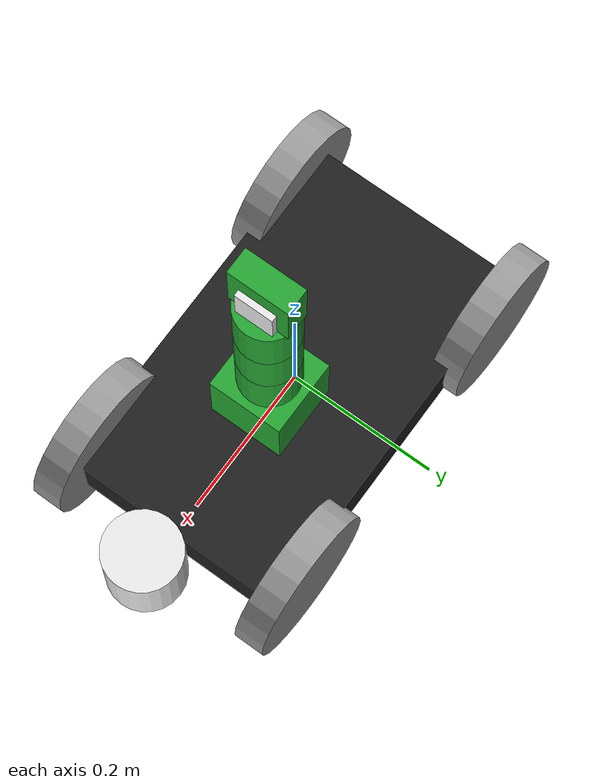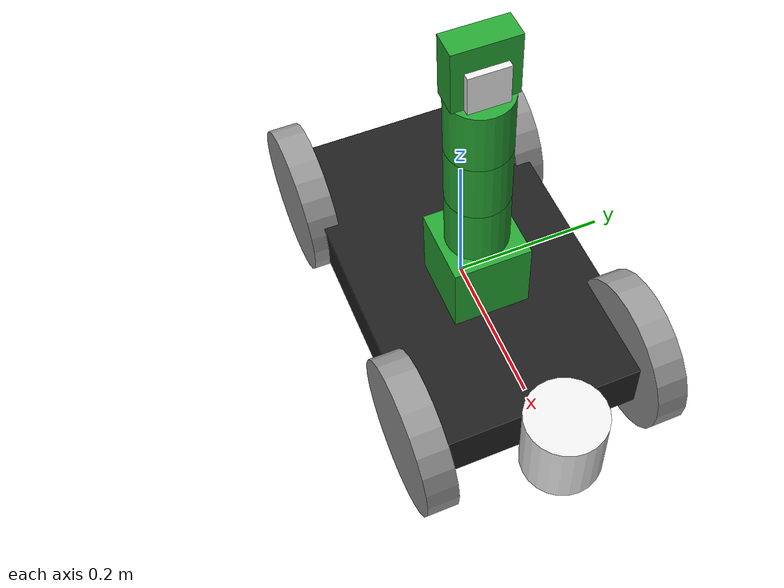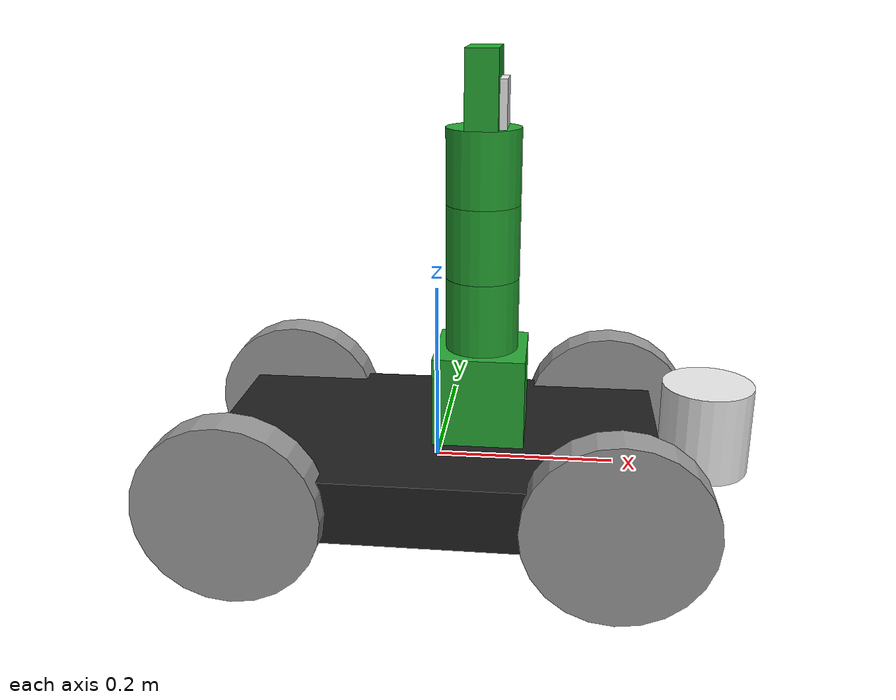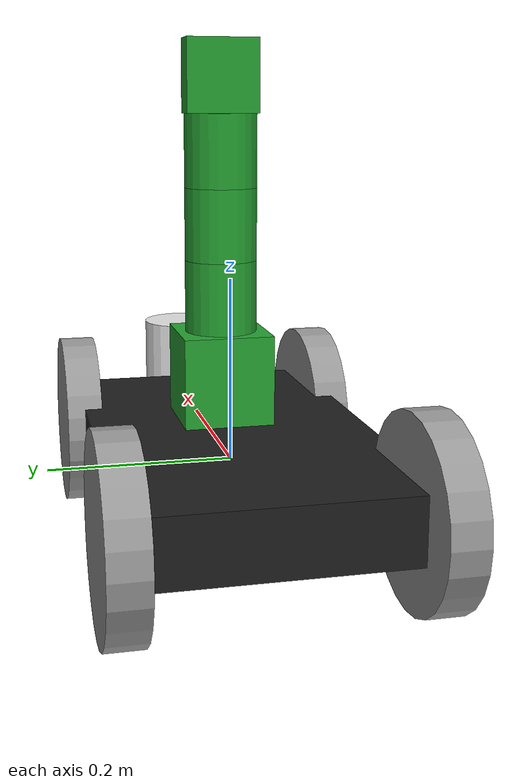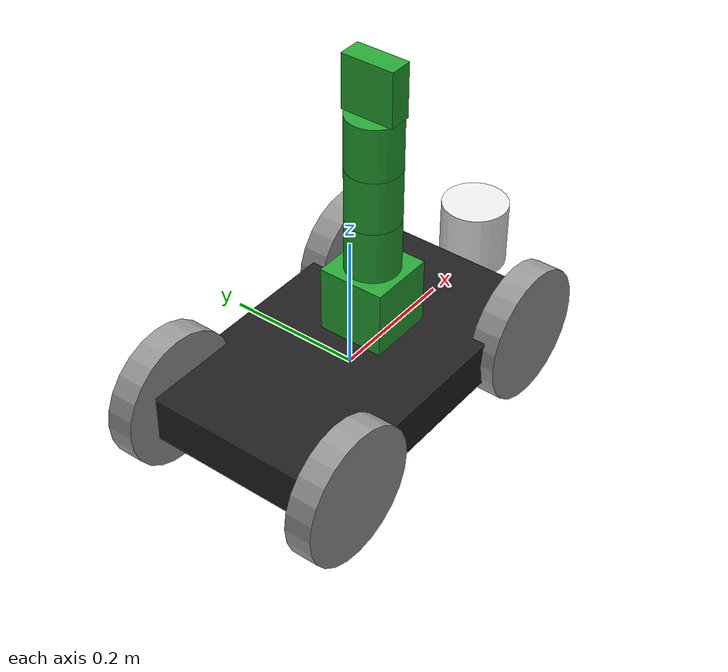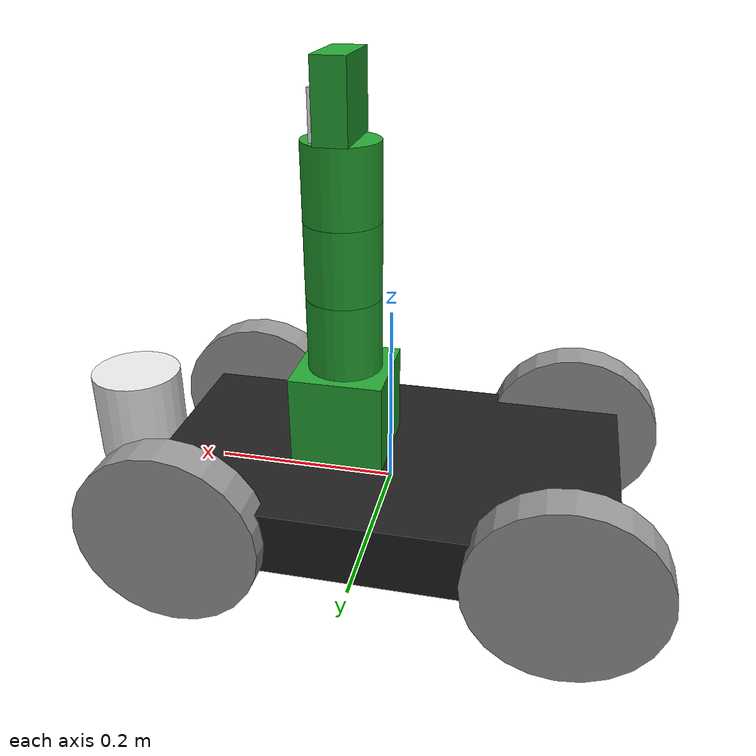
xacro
<?xml version="1.0" ?>
<robot name="myRob" xmlns:xacro="https://www.ros.org/wiki/xacro" >

 <xacro:include filename="$(find fsm_patrolling_robot)/urdf/materials.xacro" />
 <xacro:include filename="$(find fsm_patrolling_robot)/urdf/myRob.gazebo" />

 <xacro:macro name="cylinder_inertia" params="mass r l">
    <inertia ixx="${mass*(3*r*r+l*l)/12}" ixy = "0" ixz = "0"
                iyy="${mass*(3*r*r+l*l)/12}" iyz = "0" izz="${mass*(r*r)/2}" />
 </xacro:macro>

    	<xacro:property name="length_wheel" value="0.04" />
	<xacro:property name="radius_wheel" value="0.1" />

	<xacro:macro name="default_inertial" params="mass">
               <inertial>
                       <mass value="${mass}" />
                       <origin rpy="0 1.5707 1.5707" xyz="0 0 0"/>
                       <inertia ixx="0.000526666666667" ixy="0" ixz="0" iyy="0.000526666666667" iyz="0" izz="0.001"/>
               </inertial>
	</xacro:macro>

    <xacro:macro name="wheel_geometry">
		<geometry>
       			<cylinder length="${length_wheel}" radius="${radius_wheel}"/>
     	</geometry>
	</xacro:macro>

	<link name="link_chassis">
    <!-- pose and inertial -->
    <pose>0 0 0.1 0 0 0</pose>
    <inertial>
      <mass value="5"/>
      <origin rpy="0 0 0" xyz="0 0 0.1"/>
      <inertia ixx="0.0395416666667" ixy="0" ixz="0" iyy="0.106208333333" iyz="0" izz="0.106208333333"/>
    </inertial>
    <!-- body -->
    <collision name="collision_chassis">
      <geometry>
        <box size="0.5 0.3 0.07"/>
      </geometry>
    </collision>
    <visual>
      <origin rpy="0 0 0" xyz="0 0 0"/>
      <geometry>
        <box size="0.5 0.3 0.07"/>
      </geometry>
      <material name="black"/>
    </visual>
  </link>

  <link name="link_right_wheel">
    <xacro:default_inertial mass="0.2"/>
    <collision name="link_right_wheel_collision">
      <origin rpy="0 1.5707 1.5707" xyz="0 0 0"/>
      <xacro:wheel_geometry />
    </collision>
    <visual name="link_right_wheel_visual">
      <origin rpy="0 1.5707 1.5707" xyz="0 0 0"/>
      <xacro:wheel_geometry />
      <material name="grey"/>
    </visual>
  </link>

  <link name="link_right_wheel_back">
    <xacro:default_inertial mass="0.2"/>
    <collision name="link_right_wheel_collision_back">
      <origin rpy="0 1.5707 1.5707" xyz="0 0 0"/>
      <xacro:wheel_geometry />
    </collision>
    <visual name="link_right_wheel_visual_back">
      <origin rpy="0 1.5707 1.5707" xyz="0 0 0"/>
      <xacro:wheel_geometry />
      <material name="grey"/>
    </visual>
  </link>

  <link name="link_left_wheel">
    <xacro:default_inertial mass="0.2"/>
    <collision name="link_left_wheel_collision">
      <origin rpy="0 1.5707 1.5707" xyz="0 0 0"/>
      <xacro:wheel_geometry />
    </collision>
    <visual name="link_left_wheel_visual">
      <origin rpy="0 1.5707 1.5707" xyz="0 0 0"/>
      <xacro:wheel_geometry />
      <material name="grey"/>
    </visual>
  </link>

  <link name="link_left_wheel_back">
    <xacro:default_inertial mass="0.2"/>
    <collision name="link_left_wheel_collision_back">
      <origin rpy="0 1.5707 1.5707" xyz="0 0 0"/>
      <xacro:wheel_geometry />
    </collision>
    <visual name="link_left_wheel_visual_back">
      <origin rpy="0 1.5707 1.5707" xyz="0 0 0"/>
      <xacro:wheel_geometry />
      <material name="grey"/>
    </visual>
  </link>

  <joint name="joint_right_wheel" type="continuous">
    <origin rpy="0 0 0" xyz="0.2 -0.15 0"/>
    <child link="link_right_wheel"/>
    <parent link="link_chassis"/>
    <axis rpy="0 0 0" xyz="0 1 0"/>
    <limit effort="10000" velocity="1000"/>
    <joint_properties damping="1.0" friction="1.0"/>
  </joint>

  <joint name="joint_right_wheel_back" type="continuous">
    <origin rpy="0 0 0" xyz="-0.2 -0.15 0"/>
    <child link="link_right_wheel_back"/>
    <parent link="link_chassis"/>
    <axis rpy="0 0 0" xyz="0 1 0"/>
    <limit effort="10000" velocity="1000"/>
    <joint_properties damping="1.0" friction="1.0"/>
  </joint>

  <joint name="joint_left_wheel" type="continuous">
    <origin rpy="0 0 0" xyz="0.2 0.15 0"/>
    <child link="link_left_wheel"/>
    <parent link="link_chassis"/>
    <axis rpy="0 0 0" xyz="0 1 0"/>
    <limit effort="10000" velocity="1000"/>
    <joint_properties damping="1.0" friction="1.0"/>
  </joint>

  <joint name="joint_left_wheel_back" type="continuous">
    <origin rpy="0 0 0" xyz="-0.2 0.15 0"/>
    <child link="link_left_wheel_back"/>
    <parent link="link_chassis"/>
    <axis rpy="0 0 0" xyz="0 1 0"/>
    <limit effort="10000" velocity="1000"/>
    <joint_properties damping="1.0" friction="1.0"/>
  </joint>

  <link name="laser">
    <inertial>
      <origin xyz="0 0 0" rpy="0 0 0" />
      <mass value="1" />
      <xacro:cylinder_inertia mass="1" r="0.05" l="0.1" />
    </inertial>

    <visual>
      <origin xyz="0 0 0" rpy="0 0 0" />
      <geometry>
        <cylinder radius="0.05" length="0.1"/>
      </geometry>
      <material name="white" />
    </visual>

    <collision>
      <origin xyz="0 0 0" rpy="0 0 0"/>
      <geometry>
        <cylinder radius="0.05" length="0.1"/>
      </geometry>
    </collision>
  </link>

  <joint name="joint_laser" type="fixed">
    <origin xyz="0.3 0 0.05" rpy="0 0 0"/>
    <parent link="link_chassis"/>
    <child link="laser"/>
  </joint>

<!--arm definition -->

  <link name="arm_base_link">
  	<inertial>
  		<mass value="0.1"/>
  		<origin xyz="0 0 0" rpy="0 0 0" />
  		<inertia ixx="0.0" ixy="0" ixz="0" iyy="0.0" iyz="0" izz="0.0"/>
  	</inertial>
  	<collision>
  	  <origin xyz="0 0 0" rpy="0 0 0"/>
      <geometry>
        <box size="0.1 0.1 0.1"/>
      </geometry>
  	</collision>
  	<visual>
  	  <origin xyz="0 0 0" rpy="0 0 0"/>
      <geometry>
        <box size="0.1 0.1 0.1"/>
      </geometry>
      <material name="green" />
  	</visual>
  </link>

  <joint name="arm_base_to_base" type="fixed">
  	<origin rpy="0 0 0" xyz="0.05 0 0.085"/>
  	<parent link="link_chassis"/>
  	<child link="arm_base_link"/>
  </joint>

  <link name="arm_link_01">
  	<inertial>
  		<mass value="0.0025"/>
  		<origin xyz="0 0 0" rpy="0 0 0" />
  		<inertia ixx="0.0" ixy="0" ixz="0" iyy="0.0" iyz="0" izz="0.0"/>
  	</inertial>
  	<collision>
  	  <origin xyz="0 0 0" rpy="0 0 0"/>
      <geometry>
        <cylinder radius="0.04" length="0.08"/>
      </geometry>
  	</collision>
  	<visual>
  	  <origin xyz="0 0 0" rpy="0 0 0"/>
      <geometry>
        <cylinder radius="0.04" length="0.08"/>
      </geometry>
      <material name="green" />
  	</visual>
  </link>

  <joint name="arm_joint_01" type="revolute">
  	<axis xyz="0 0 1"/>
  	<limit effort="1000.0" lower="-3.14" upper="3.14" velocity="0.2"/>
  	<origin rpy="0 0 0" xyz="0 0 0.09"/>
  	<parent link="arm_base_link"/>
  	<child link="arm_link_01"/>
  </joint>

  <link name="arm_link_02">
  	<inertial>
  		<mass value="0.0025"/>
  		<origin xyz="0 0 0" rpy="0 0 0" />
  		<inertia ixx="0.0" ixy="0" ixz="0" iyy="0.0" iyz="0" izz="0.0"/>
  	</inertial>
  	<collision>
  	  <origin xyz="0 0 0.04" rpy="0 0 0"/>
      <geometry>
        <cylinder radius="0.04" length="0.08"/>
      </geometry>
  	</collision>
  	<visual>
  	  <origin xyz="0 0 0.04" rpy="0 0 0"/>
      <geometry>
        <cylinder radius="0.04" length="0.08"/>
      </geometry>
      <material name="green" />
  	</visual>
  </link>

  <joint name="arm_joint_02" type="revolute">
  	<axis xyz="1 0 0"/>
  	<limit effort="1000.0" lower="-1.8" upper="1.8" velocity="0.2"/>
  	<origin rpy="0 0 0" xyz="0 0 0.04"/>
  	<parent link="arm_link_01"/>
  	<child link="arm_link_02"/>
  </joint>

  <link name="arm_link_03">
  	<inertial>
  		<mass value="0.0025"/>
  		<origin xyz="0 0 0" rpy="0 0 0" />
  		<inertia ixx="0.0" ixy="0" ixz="0" iyy="0.0" iyz="0" izz="0.0"/>
  	</inertial>
  	<collision>
  	  <origin xyz="0 0 0.04" rpy="0 0 0"/>
      <geometry>
        <cylinder radius="0.04" length="0.08"/>
      </geometry>
  	</collision>
  	<visual>
  	  <origin xyz="0 0 0.04" rpy="0 0 0"/>
      <geometry>
        <cylinder radius="0.04" length="0.08"/>
      </geometry>
      <material name="green" />
  	</visual>
  </link>

  <joint name="arm_joint_03" type="revolute">
  	<axis xyz="1 0 0"/>
  	<limit effort="1000.0" lower="-1.8" upper="1.8" velocity="0.2"/>
  	<origin rpy="0 0 0" xyz="0 0 0.08"/>
  	<parent link="arm_link_02"/>
  	<child link="arm_link_03"/>
  </joint>

  <link name="arm_link_04">
  	<inertial>
  		<mass value="0.025"/>
  		<origin xyz="0 0 0" rpy="0 0 0" />
  		<inertia ixx="0.0" ixy="0" ixz="0" iyy="0.0" iyz="0" izz="0.0"/>
  	</inertial>
  	<collision>
  	  <origin xyz="0 0 0.04" rpy="0 0 1.57"/>
      <geometry>
        <box size="0.034 0.08 0.08"/>
      </geometry>
  	</collision>
  	<visual>
  	  <origin xyz="0 0 0.04" rpy="0 0 1.57"/>
      <geometry>
        <box size="0.034 0.08 0.08"/>
      </geometry>
      <material name="green" />
  	</visual>
  </link>

  <joint name="arm_joint_04" type="revolute">
  	<axis xyz="1 0 0"/>
  	<limit effort="1000.0" lower="-1.8" upper="1.8" velocity="0.5"/>
  	<origin rpy="0 0 1.57" xyz="0 0 0.08"/>
  	<parent link="arm_link_03"/>
  	<child link="arm_link_04"/>
  </joint>

  <!-- Camera -->
  <link name="camera_link">
    <collision>
      <origin xyz="0 0 0.025" rpy="0 0 0"/>
      <geometry>
        <box size="0.02 0.05 0.05"/>
      </geometry>
    </collision>

    <visual>
      <origin xyz="0 0 0.025" rpy="0 0 0"/>
      <geometry>
    <box size="0.02 0.05 0.05"/>
      </geometry>
      <material name="white"/>
    </visual>

    <inertial>
      <mass value="0" />
      <origin xyz="0 0 0" rpy="0 0 0"/>
      <inertia ixx="0" ixy="0" ixz="0" iyy="0" iyz="0" izz="0" />
    </inertial>
  </link>

  <joint name="camera_joint" type="fixed">
    <axis xyz="0 0 0" />
    <origin xyz="0 -0.015 0.0" rpy="0 0 -1.57"/>
    <parent link="arm_link_04"/>
    <child link="camera_link"/>
  </joint>

<transmission name="arm_joint_01_trans">
	<type>transmission_interface/SimpleTransmission</type>
	<joint name="arm_joint_01">
		<hardwareInterface>hardware_interface/EffortJointInterface</hardwareInterface>
	</joint>
	<actuator name="motor1">
		<hardwareInterface>hardware_interface/EffortJointInterface</hardwareInterface>
		<mechanicalInterface>1</mechanicalInterface>
	</actuator>
</transmission>

<transmission name="arm_joint_02_trans">
	<type>transmission_interface/SimpleTransmission</type>
	<joint name="arm_joint_02">
		<hardwareInterface>hardware_interface/EffortJointInterface</hardwareInterface>
	</joint>
	<actuator name="motor2">
		<hardwareInterface>hardware_interface/EffortJointInterface</hardwareInterface>
		<mechanicalInterface>1</mechanicalInterface>
	</actuator>
</transmission>

<transmission name="arm_joint_03_trans">
	<type>transmission_interface/SimpleTransmission</type>
	<joint name="arm_joint_03">
		<hardwareInterface>hardware_interface/EffortJointInterface</hardwareInterface>
	</joint>
	<actuator name="motor3">
		<hardwareInterface>hardware_interface/EffortJointInterface</hardwareInterface>
		<mechanicalInterface>1</mechanicalInterface>
	</actuator>
</transmission>

<transmission name="arm_joint_04_trans">
    <type>transmission_interface/SimpleTransmission</type>
    <joint name="arm_joint_04">
      <hardwareInterface>hardware_interface/EffortJointInterface</hardwareInterface>
    </joint>
    <actuator name="motor4">
      <hardwareInterface>hardware_interface/EffortJointInterface</hardwareInterface>
      <mechanicalInterface>1</mechanicalInterface>
    </actuator>
</transmission>

</robot>
